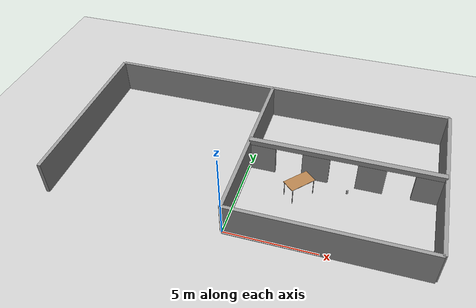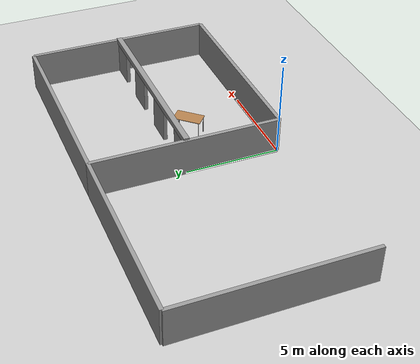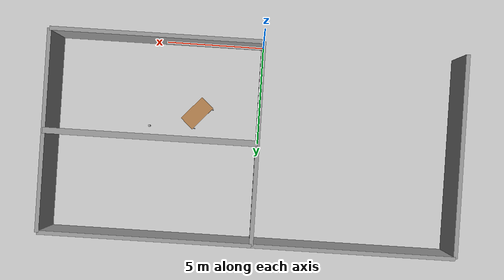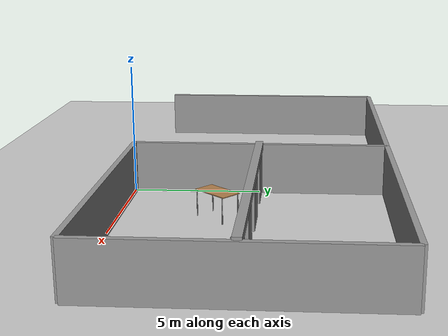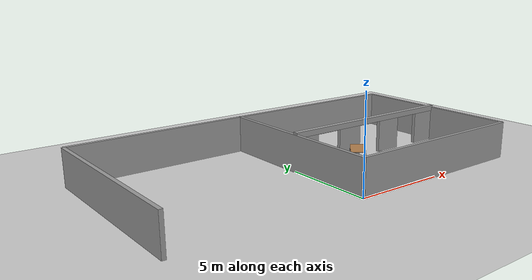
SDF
<sdf version="1.4">
 <world name="default">
  <model name="ground_plane">
   <static>1</static>
   <link name="link">
    <collision name="collision">
     <geometry><plane><normal>0 0 1</normal><size>100 100</size></plane></geometry>
     <surface><friction><ode><mu>100</mu><mu2>50</mu2></ode></friction></surface>
    </collision>
    <visual name="visual">
     <cast_shadows>0</cast_shadows>
     <geometry><plane><normal>0 0 1</normal><size>100 100</size></plane></geometry>
     <material>
      <script><uri>file://media/materials/scripts/gazebo.material</uri><name>Gazebo/Grey</name></script>
     </material>
    </visual>
    <velocity_decay><linear>0</linear><angular>0</angular></velocity_decay>
   </link>
  </model>
  <model name="3_doors">
   <static>1</static>
   <link name="wall_link_0">
    <pose>5.25 0 1 0 -0 -3.14159</pose>
    <collision name="wall_link_0_geom"><geometry><box><size>10.5 0.2 2</size></box></geometry></collision>
    <visual name="wall_link_0_visual">
     <geometry><box><size>10.5 0.2 2</size></box></geometry>
     <material>
      <script><uri>file://media/materials/scripts/gazebo.material</uri><name>Gazebo/Grey</name></script>
     </material>
    </visual>
    <velocity_decay><linear>0</linear><angular>0</angular></velocity_decay>
   </link>
   <link name="wall_link_1">
    <pose>10.5 5 1 0 0 -1.5708</pose>
    <collision name="wall_link_1_geom"><geometry><box><size>10 0.2 2</size></box></geometry></collision>
    <visual name="wall_link_1_visual">
     <geometry><box><size>10 0.2 2</size></box></geometry>
     <material>
      <script><uri>file://media/materials/scripts/gazebo.material</uri><name>Gazebo/Grey</name></script>
     </material>
    </visual>
    <velocity_decay><linear>0</linear><angular>0</angular></velocity_decay>
   </link>
   <link name="wall_link_2">
    <pose>5.25 10 1 0 -0 0</pose>
    <collision name="wall_link_2_geom"><geometry><box><size>10.5 0.2 2</size></box></geometry></collision>
    <visual name="wall_link_2_visual">
     <geometry><box><size>10.5 0.2 2</size></box></geometry>
     <material>
      <script><uri>file://media/materials/scripts/gazebo.material</uri><name>Gazebo/Grey</name></script>
     </material>
    </visual>
    <velocity_decay><linear>0</linear><angular>0</angular></velocity_decay>
   </link>
   <link name="wall_link_3">
    <pose>0 5 1 0 -0 1.5708</pose>
    <collision name="wall_link_3_geom"><geometry><box><size>10 0.2 2</size></box></geometry></collision>
    <visual name="wall_link_3_visual">
     <geometry><box><size>10 0.2 2</size></box></geometry>
     <material>
      <script><uri>file://media/materials/scripts/gazebo.material</uri><name>Gazebo/Grey</name></script>
     </material>
    </visual>
    <velocity_decay><linear>0</linear><angular>0</angular></velocity_decay>
   </link>
   <link name="wall_link_4">
    <pose>-5 10 1 0 -0 0</pose>
    <collision name="wall_link_4_geom"><geometry><box><size>10 0.2 2</size></box></geometry></collision>
    <visual name="wall_link_4_visual">
     <geometry><box><size>10 0.2 2</size></box></geometry>
     <material>
      <script><uri>file://media/materials/scripts/gazebo.material</uri><name>Gazebo/Grey</name></script>
     </material>
    </visual>
    <velocity_decay><linear>0</linear><angular>0</angular></velocity_decay>
   </link>
   <link name="wall_link_5">
    <pose>-10 5 1 0 -0 1.5708</pose>
    <collision name="wall_link_5_geom"><geometry><box><size>10 0.2 2</size></box></geometry></collision>
    <visual name="wall_link_5_visual">
     <geometry><box><size>10 0.2 2</size></box></geometry>
     <material>
      <script><uri>file://media/materials/scripts/gazebo.material</uri><name>Gazebo/Grey</name></script>
     </material>
    </visual>
    <velocity_decay><linear>0</linear><angular>0</angular></velocity_decay>
   </link>
   <link name="wall_link_6">
    <pose>0 5 1 0 -0 0</pose>
    <collision name="wall_link_6_geom"><geometry><box><size>0 0.2 2</size></box></geometry></collision>
    <visual name="wall_link_6_visual">
     <geometry><box><size>0 0.2 2</size></box></geometry>
     <material>
      <script><uri>file://media/materials/scripts/gazebo.material</uri><name>Gazebo/Grey</name></script>
     </material>
    </visual>
    <velocity_decay><linear>0</linear><angular>0</angular></velocity_decay>
   </link>
   <link name="wall_link_7">
    <pose>0.75 5 1 0 -0 -3.14159</pose>
    <collision name="wall_link_7_geom"><geometry><box><size>1.5 0.2 2</size></box></geometry></collision>
    <visual name="wall_link_7_visual">
     <geometry><box><size>1.5 0.2 2</size></box></geometry>
     <material>
      <script><uri>file://media/materials/scripts/gazebo.material</uri><name>Gazebo/Grey</name></script>
     </material>
    </visual>
    <velocity_decay><linear>0</linear><angular>0</angular></velocity_decay>
   </link>
   <link name="wall_link_8">
    <pose>3.75 5 1 0 -0 -3.14159</pose>
    <collision name="wall_link_8_geom"><geometry><box><size>1.5 0.2 2</size></box></geometry></collision>
    <visual name="wall_link_8_visual">
     <geometry><box><size>1.5 0.2 2</size></box></geometry>
     <material>
      <script><uri>file://media/materials/scripts/gazebo.material</uri><name>Gazebo/Grey</name></script>
     </material>
    </visual>
    <velocity_decay><linear>0</linear><angular>0</angular></velocity_decay>
   </link>
   <link name="wall_link_9">
    <pose>6.75 5 1 0 -0 -3.14159</pose>
    <collision name="wall_link_9_geom"><geometry><box><size>1.5 0.2 2</size></box></geometry></collision>
    <visual name="wall_link_9_visual">
     <geometry><box><size>1.5 0.2 2</size></box></geometry>
     <material>
      <script><uri>file://media/materials/scripts/gazebo.material</uri><name>Gazebo/Grey</name></script>
     </material>
    </visual>
    <velocity_decay><linear>0</linear><angular>0</angular></velocity_decay>
   </link>
   <link name="wall_link_10">
    <pose>9.75 5 1 0 -0 -3.14159</pose>
    <collision name="wall_link_10_geom"><geometry><box><size>1.5 0.2 2</size></box></geometry></collision>
    <visual name="wall_link_10_visual">
     <geometry><box><size>1.5 0.2 2</size></box></geometry>
     <material>
      <script><uri>file://media/materials/scripts/gazebo.material</uri><name>Gazebo/Grey</name></script>
     </material>
    </visual>
    <velocity_decay><linear>0</linear><angular>0</angular></velocity_decay>
   </link>
   <link name="wall_link_11">
    <pose>5.25 5 1.95 0 -0 -3.14159</pose>
    <collision name="wall_link_11_geom"><geometry><box><size>10.5 0.2 0.3</size></box></geometry></collision>
    <visual name="wall_link_11_visual">
     <geometry><box><size>10.5 0.3 0.3</size></box></geometry>
     <material>
      <script><uri>file://media/materials/scripts/gazebo.material</uri><name>Gazebo/Grey</name></script>
     </material>
    </visual>
    <velocity_decay><linear>0</linear><angular>0</angular></velocity_decay>
   </link>
  </model>
  <model name="table">
   <static>1</static>
   <link name="link">
    <collision name="surface">
     <pose>0 0 1 0 -0 0</pose>
     <geometry><box><size>1.5 0.8 0.03</size></box></geometry>
     <surface><friction><ode><mu>0.6</mu><mu2>0.6</mu2></ode></friction></surface>
    </collision>
    <visual name="visual1">
     <pose>0 0 1 0 -0 0</pose>
     <geometry><box><size>1.5 0.8 0.03</size></box></geometry>
     <material>
      <script><uri>file://media/materials/scripts/gazebo.material</uri><name>Gazebo/Wood</name></script>
     </material>
    </visual>
    <collision name="front_left_leg">
     <pose>0.68 0.38 0.5 0 -0 0</pose>
     <geometry><cylinder><radius>0.02</radius><length>1</length></cylinder></geometry>
    </collision>
    <visual name="front_left_leg">
     <pose>0.68 0.38 0.5 0 -0 0</pose>
     <geometry><cylinder><radius>0.02</radius><length>1</length></cylinder></geometry>
     <material>
      <script><uri>file://media/materials/scripts/gazebo.material</uri><name>Gazebo/Grey</name></script>
     </material>
    </visual>
    <collision name="front_right_leg">
     <pose>0.68 -0.38 0.5 0 -0 0</pose>
     <geometry><cylinder><radius>0.02</radius><length>1</length></cylinder></geometry>
    </collision>
    <visual name="front_right_leg">
     <pose>0.68 -0.38 0.5 0 -0 0</pose>
     <geometry><cylinder><radius>0.02</radius><length>1</length></cylinder></geometry>
     <material>
      <script><uri>file://media/materials/scripts/gazebo.material</uri><name>Gazebo/Grey</name></script>
     </material>
    </visual>
    <collision name="back_right_leg">
     <pose>-0.68 -0.38 0.5 0 -0 0</pose>
     <geometry><cylinder><radius>0.02</radius><length>1</length></cylinder></geometry>
    </collision>
    <visual name="back_right_leg">
     <pose>-0.68 -0.38 0.5 0 -0 0</pose>
     <geometry><cylinder><radius>0.02</radius><length>1</length></cylinder></geometry>
     <material>
      <script><uri>file://media/materials/scripts/gazebo.material</uri><name>Gazebo/Grey</name></script>
     </material>
    </visual>
    <collision name="back_left_leg">
     <pose>-0.68 0.38 0.5 0 -0 0</pose>
     <geometry><cylinder><radius>0.02</radius><length>1</length></cylinder></geometry>
    </collision>
    <visual name="back_left_leg">
     <pose>-0.68 0.38 0.5 0 -0 0</pose>
     <geometry><cylinder><radius>0.02</radius><length>1</length></cylinder></geometry>
     <material>
      <script><uri>file://media/materials/scripts/gazebo.material</uri><name>Gazebo/Grey</name></script>
     </material>
    </visual>
    <velocity_decay><linear>0</linear><angular>0</angular></velocity_decay>
   </link>
   <pose>3.13828 3.65052 0 0 -0 0.84</pose>
  </model>
  <model name="beer">
   <link name="link">
    <pose>0 0 0.115 0 -0 0</pose>
    <inertial>
     <mass>0.39</mass>
     <inertia><ixx>0.00058</ixx><ixy>0</ixy><ixz>0</ixz><iyy>0.00058</iyy><iyz>0</iyz><izz>0.00019</izz></inertia>
    </inertial>
    <collision name="collision">
     <geometry><cylinder><radius>0.055</radius><length>0.23</length></cylinder></geometry>
    </collision>
    <visual name="visual">
     <geometry><cylinder><radius>0.055</radius><length>0.23</length></cylinder></geometry>
     <material>
      <script>
       <uri>model://beer/materials/scripts</uri>
       <uri>model://beer/materials/textures</uri>
       <name>Beer/Diffuse</name>
      </script>
     </material>
    </visual>
    <velocity_decay><linear>0</linear><angular>0</angular></velocity_decay>
   </link>
   <pose>5.67698 4.41169 -7e-06 -1e-06 -0 -2.7e-05</pose>
   <static>0</static>
  </model>
 </world>
</sdf>
